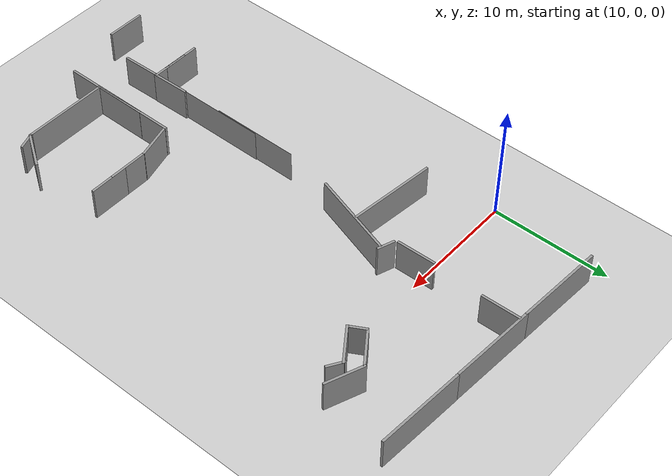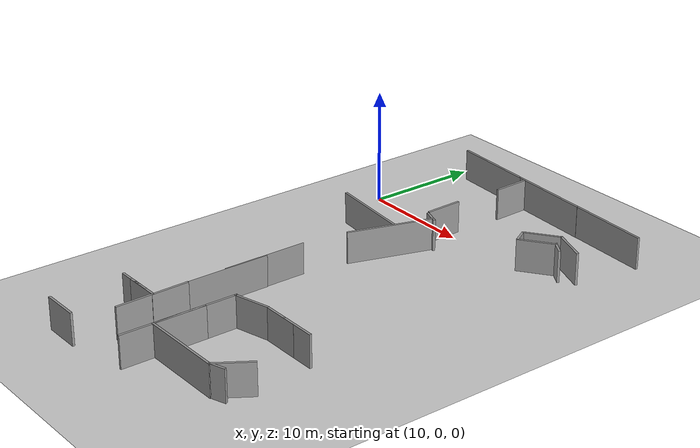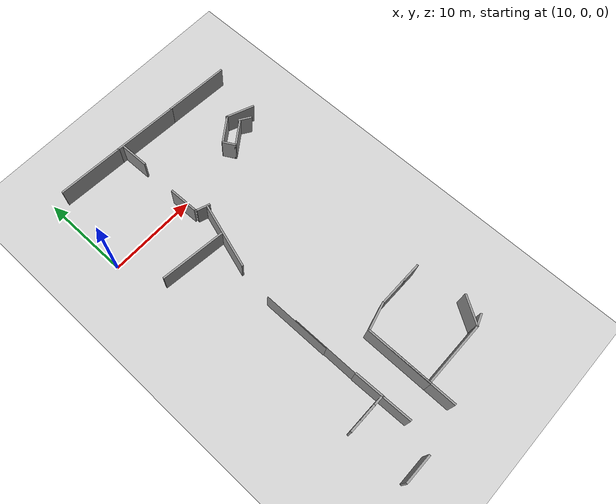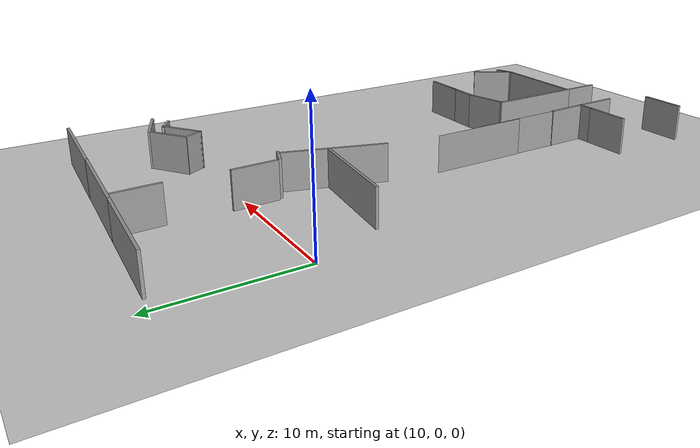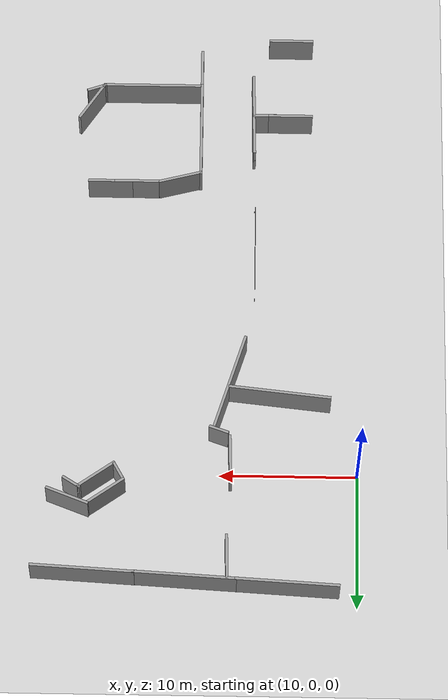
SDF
<sdf version="1.7">
 <world name="default">
  <model name="ground_plane">
   <static>1</static>
   <link name="link">
    <collision name="collision">
     <geometry><plane><normal>0 0 1</normal><size>100 100</size></plane></geometry>
     <surface>
      <contact><collide_bitmask>65535</collide_bitmask></contact>
      <friction><ode><mu>100</mu><mu2>50</mu2></ode></friction>
     </surface>
    </collision>
    <visual name="visual">
     <cast_shadows>0</cast_shadows>
     <geometry><plane><normal>0 0 1</normal><size>100 100</size></plane></geometry>
     <material>
      <script><uri>file://media/materials/scripts/gazebo.material</uri><name>Gazebo/Grey</name></script>
     </material>
    </visual>
   </link>
  </model>
  <model name="grey_wall_clone_0">
   <static>1</static>
   <link name="link">
    <pose>0 0 1.4 0 -0 0</pose>
    <collision name="collision"><geometry><box><size>7.5 0.2 2.8</size></box></geometry></collision>
    <visual name="visual">
     <cast_shadows>0</cast_shadows>
     <geometry><box><size>7.5 0.2 2.8</size></box></geometry>
     <material>
      <script>
       <uri>model://grey_wall/materials/scripts</uri>
       <uri>model://grey_wall/materials/textures</uri>
       <name>vrc/grey_wall</name>
      </script>
     </material>
    </visual>
   </link>
   <pose>15.0501 8.9147 -0 0 0 -0.056773</pose>
  </model>
  <model name="grey_wall_clone_1">
   <static>1</static>
   <link name="link">
    <pose>0 0 1.4 0 -0 0</pose>
    <collision name="collision"><geometry><box><size>7.5 0.2 2.8</size></box></geometry></collision>
    <visual name="visual">
     <cast_shadows>0</cast_shadows>
     <geometry><box><size>7.5 0.2 2.8</size></box></geometry>
     <material>
      <script>
       <uri>model://grey_wall/materials/scripts</uri>
       <uri>model://grey_wall/materials/textures</uri>
       <name>vrc/grey_wall</name>
      </script>
     </material>
    </visual>
   </link>
   <pose>22.4047 8.49986 -0 0 0 -0.056773</pose>
  </model>
  <model name="grey_wall_clone_2">
   <static>1</static>
   <link name="link">
    <pose>0 0 1.4 0 -0 0</pose>
    <collision name="collision"><geometry><box><size>7.5 0.2 2.8</size></box></geometry></collision>
    <visual name="visual">
     <cast_shadows>0</cast_shadows>
     <geometry><box><size>7.5 0.2 2.8</size></box></geometry>
     <material>
      <script>
       <uri>model://grey_wall/materials/scripts</uri>
       <uri>model://grey_wall/materials/textures</uri>
       <name>vrc/grey_wall</name>
      </script>
     </material>
    </visual>
   </link>
   <pose>29.7028 8.10104 -0 0 0 -0.056773</pose>
  </model>
  <model name="half_grey_wall_clone_clone_0_clone_clone_clone_clone_2_clone_clone_0">
   <link name="link">
    <pose>0 0 1.4 0 -0 0</pose>
    <inertial>
     <mass>1</mass>
     <inertia><ixx>1</ixx><ixy>0</ixy><ixz>0</ixz><iyy>1</iyy><iyz>0</iyz><izz>1</izz></inertia>
    </inertial>
    <visual name="visual">
     <cast_shadows>0</cast_shadows>
     <geometry><box><size>3.3 0.2 2.8</size></box></geometry>
     <material>
      <script>
       <uri>model://grey_wall/materials/scripts</uri>
       <uri>model://grey_wall/materials/textures</uri>
       <name>vrc/grey_wall</name>
      </script>
      <shader type="pixel"><normal_map>__default__</normal_map></shader>
      <ambient>1 1 1 1</ambient>
      <diffuse>1 1 1 1</diffuse>
      <specular>0 0 0 1</specular>
      <emissive>0 0 0 1</emissive>
     </material>
    </visual>
    <collision name="collision">
     <geometry><box><size>3.3 0.2 2.8</size></box></geometry>
     <surface>
      <friction>
       <ode><mu>1</mu><mu2>1</mu2><fdir1>0 0 0</fdir1><slip1>0</slip1><slip2>0</slip2></ode>
       <torsional>
        <coefficient>1</coefficient>
        <patch_radius>0</patch_radius>
        <surface_radius>0</surface_radius>
        <use_patch_radius>1</use_patch_radius>
        <ode><slip>0</slip></ode>
       </torsional>
      </friction>
      <bounce><restitution_coefficient>0</restitution_coefficient><threshold>1e+06</threshold></bounce>
      <contact>
       <collide_without_contact>0</collide_without_contact>
       <collide_without_contact_bitmask>1</collide_without_contact_bitmask>
       <collide_bitmask>1</collide_bitmask>
       <ode>
        <soft_cfm>0</soft_cfm>
        <soft_erp>0.2</soft_erp>
        <kp>1e+13</kp>
        <kd>1</kd>
        <max_vel>0.01</max_vel>
        <min_depth>0</min_depth>
       </ode>
       <bullet>
        <split_impulse>1</split_impulse>
        <split_impulse_penetration_threshold>-0.01</split_impulse_penetration_threshold>
        <soft_cfm>0</soft_cfm>
        <soft_erp>0.2</soft_erp>
        <kp>1e+13</kp>
        <kd>1</kd>
       </bullet>
      </contact>
     </surface>
    </collision>
   </link>
   <static>1</static>
   <pose>15.0055 -27.9222 0 0 -0 3.13943</pose>
  </model>
  <model name="half_grey_wall_clone_clone_0_clone_clone_clone_clone_2_clone_clone_1">
   <link name="link">
    <pose>0 0 1.4 0 -0 0</pose>
    <inertial>
     <mass>1</mass>
     <inertia><ixx>1</ixx><ixy>0</ixy><ixz>0</ixz><iyy>1</iyy><iyz>0</iyz><izz>1</izz></inertia>
    </inertial>
    <visual name="visual">
     <cast_shadows>0</cast_shadows>
     <geometry><box><size>3.3 0.2 2.8</size></box></geometry>
     <material>
      <script>
       <uri>model://grey_wall/materials/scripts</uri>
       <uri>model://grey_wall/materials/textures</uri>
       <name>vrc/grey_wall</name>
      </script>
      <shader type="pixel"><normal_map>__default__</normal_map></shader>
      <ambient>1 1 1 1</ambient>
      <diffuse>1 1 1 1</diffuse>
      <specular>0 0 0 1</specular>
      <emissive>0 0 0 1</emissive>
     </material>
    </visual>
    <collision name="collision">
     <geometry><box><size>3.3 0.2 2.8</size></box></geometry>
     <surface>
      <friction>
       <ode><mu>1</mu><mu2>1</mu2><fdir1>0 0 0</fdir1><slip1>0</slip1><slip2>0</slip2></ode>
       <torsional>
        <coefficient>1</coefficient>
        <patch_radius>0</patch_radius>
        <surface_radius>0</surface_radius>
        <use_patch_radius>1</use_patch_radius>
        <ode><slip>0</slip></ode>
       </torsional>
      </friction>
      <bounce><restitution_coefficient>0</restitution_coefficient><threshold>1e+06</threshold></bounce>
      <contact>
       <collide_without_contact>0</collide_without_contact>
       <collide_without_contact_bitmask>1</collide_without_contact_bitmask>
       <collide_bitmask>1</collide_bitmask>
       <ode>
        <soft_cfm>0</soft_cfm>
        <soft_erp>0.2</soft_erp>
        <kp>1e+13</kp>
        <kd>1</kd>
        <max_vel>0.01</max_vel>
        <min_depth>0</min_depth>
       </ode>
       <bullet>
        <split_impulse>1</split_impulse>
        <split_impulse_penetration_threshold>-0.01</split_impulse_penetration_threshold>
        <soft_cfm>0</soft_cfm>
        <soft_erp>0.2</soft_erp>
        <kp>1e+13</kp>
        <kd>1</kd>
       </bullet>
      </contact>
     </surface>
    </collision>
   </link>
   <static>1</static>
   <pose>16.1888 -27.9291 0 0 -0 3.13943</pose>
  </model>
  <model name="half_grey_wall_clone_clone_0_clone_clone_clone_clone_0_clone_0_clone_clone_1_clone_clone_clone_0">
   <link name="link">
    <pose>0 0 1.4 0 -0 0</pose>
    <inertial>
     <mass>1</mass>
     <inertia><ixx>1</ixx><ixy>0</ixy><ixz>0</ixz><iyy>1</iyy><iyz>0</iyz><izz>1</izz></inertia>
    </inertial>
    <visual name="visual">
     <cast_shadows>0</cast_shadows>
     <geometry><box><size>3.3 0.2 2.8</size></box></geometry>
     <material>
      <script>
       <uri>model://grey_wall/materials/scripts</uri>
       <uri>model://grey_wall/materials/textures</uri>
       <name>vrc/grey_wall</name>
      </script>
      <shader type="pixel"><normal_map>__default__</normal_map></shader>
      <ambient>1 1 1 1</ambient>
      <diffuse>1 1 1 1</diffuse>
      <specular>0 0 0 1</specular>
      <emissive>0 0 0 1</emissive>
     </material>
    </visual>
    <collision name="collision">
     <geometry><box><size>3.3 0.2 2.8</size></box></geometry>
     <surface>
      <friction>
       <ode><mu>1</mu><mu2>1</mu2><fdir1>0 0 0</fdir1><slip1>0</slip1><slip2>0</slip2></ode>
       <torsional>
        <coefficient>1</coefficient>
        <patch_radius>0</patch_radius>
        <surface_radius>0</surface_radius>
        <use_patch_radius>1</use_patch_radius>
        <ode><slip>0</slip></ode>
       </torsional>
      </friction>
      <bounce><restitution_coefficient>0</restitution_coefficient><threshold>1e+06</threshold></bounce>
      <contact>
       <collide_without_contact>0</collide_without_contact>
       <collide_without_contact_bitmask>1</collide_without_contact_bitmask>
       <collide_bitmask>1</collide_bitmask>
       <ode>
        <soft_cfm>0</soft_cfm>
        <soft_erp>0.2</soft_erp>
        <kp>1e+13</kp>
        <kd>1</kd>
        <max_vel>0.01</max_vel>
        <min_depth>0</min_depth>
       </ode>
       <bullet>
        <split_impulse>1</split_impulse>
        <split_impulse_penetration_threshold>-0.01</split_impulse_penetration_threshold>
        <soft_cfm>0</soft_cfm>
        <soft_erp>0.2</soft_erp>
        <kp>1e+13</kp>
        <kd>1</kd>
       </bullet>
      </contact>
     </surface>
    </collision>
   </link>
   <static>1</static>
   <pose>17.7676 -29.5911 -0 0 0 -1.5482</pose>
  </model>
  <model name="half_grey_wall_clone_clone_0_clone_clone_clone_clone_2_clone_clone_1_clone_0">
   <link name="link">
    <pose>0 0 1.4 0 -0 0</pose>
    <inertial>
     <mass>1</mass>
     <inertia><ixx>1</ixx><ixy>0</ixy><ixz>0</ixz><iyy>1</iyy><iyz>0</iyz><izz>1</izz></inertia>
    </inertial>
    <visual name="visual">
     <cast_shadows>0</cast_shadows>
     <geometry><box><size>3.3 0.2 2.8</size></box></geometry>
     <material>
      <script>
       <uri>model://grey_wall/materials/scripts</uri>
       <uri>model://grey_wall/materials/textures</uri>
       <name>vrc/grey_wall</name>
      </script>
      <shader type="pixel"><normal_map>__default__</normal_map></shader>
      <ambient>1 1 1 1</ambient>
      <diffuse>1 1 1 1</diffuse>
      <specular>0 0 0 1</specular>
      <emissive>0 0 0 1</emissive>
     </material>
    </visual>
    <collision name="collision">
     <geometry><box><size>3.3 0.2 2.8</size></box></geometry>
     <surface>
      <friction>
       <ode><mu>1</mu><mu2>1</mu2><fdir1>0 0 0</fdir1><slip1>0</slip1><slip2>0</slip2></ode>
       <torsional>
        <coefficient>1</coefficient>
        <patch_radius>0</patch_radius>
        <surface_radius>0</surface_radius>
        <use_patch_radius>1</use_patch_radius>
        <ode><slip>0</slip></ode>
       </torsional>
      </friction>
      <bounce><restitution_coefficient>0</restitution_coefficient><threshold>1e+06</threshold></bounce>
      <contact>
       <collide_without_contact>0</collide_without_contact>
       <collide_without_contact_bitmask>1</collide_without_contact_bitmask>
       <collide_bitmask>1</collide_bitmask>
       <ode>
        <soft_cfm>0</soft_cfm>
        <soft_erp>0.2</soft_erp>
        <kp>1e+13</kp>
        <kd>1</kd>
        <max_vel>0.01</max_vel>
        <min_depth>0</min_depth>
       </ode>
       <bullet>
        <split_impulse>1</split_impulse>
        <split_impulse_penetration_threshold>-0.01</split_impulse_penetration_threshold>
        <soft_cfm>0</soft_cfm>
        <soft_erp>0.2</soft_erp>
        <kp>1e+13</kp>
        <kd>1</kd>
       </bullet>
      </contact>
     </surface>
    </collision>
   </link>
   <static>1</static>
   <pose>14.972 -34.2647 0 0 -0 3.13943</pose>
  </model>
  <model name="grey_wall_0_clone_clone_clone_0_clone_clone_1">
   <static>1</static>
   <link name="link">
    <pose>0 0 1.4 0 -0 0</pose>
    <collision name="collision"><geometry><box><size>7.5 0.2 2.8</size></box></geometry></collision>
    <visual name="visual">
     <cast_shadows>0</cast_shadows>
     <geometry><box><size>7.5 0.2 2.8</size></box></geometry>
     <material>
      <script>
       <uri>model://grey_wall/materials/scripts</uri>
       <uri>model://grey_wall/materials/textures</uri>
       <name>vrc/grey_wall</name>
      </script>
     </material>
    </visual>
   </link>
   <pose>21.6912 -29.545 0 0 -0 1.5708</pose>
  </model>
  <model name="grey_wall_0_clone_clone_clone_0_clone_clone_2">
   <static>1</static>
   <link name="link">
    <pose>0 0 1.4 0 -0 0</pose>
    <collision name="collision"><geometry><box><size>7.5 0.2 2.8</size></box></geometry></collision>
    <visual name="visual">
     <cast_shadows>0</cast_shadows>
     <geometry><box><size>7.5 0.2 2.8</size></box></geometry>
     <material>
      <script>
       <uri>model://grey_wall/materials/scripts</uri>
       <uri>model://grey_wall/materials/textures</uri>
       <name>vrc/grey_wall</name>
      </script>
     </material>
    </visual>
   </link>
   <pose>21.6851 -26.7343 0 0 -0 1.5708</pose>
  </model>
  <model name="grey_wall_1_clone_clone_clone_clone_clone_clone_0_clone_2">
   <static>1</static>
   <link name="link">
    <pose>0 0 1.4 0 -0 0</pose>
    <collision name="collision"><geometry><box><size>7.5 0.2 2.8</size></box></geometry></collision>
    <visual name="visual">
     <cast_shadows>0</cast_shadows>
     <geometry><box><size>7.5 0.2 2.8</size></box></geometry>
     <material>
      <script>
       <uri>model://grey_wall/materials/scripts</uri>
       <uri>model://grey_wall/materials/textures</uri>
       <name>vrc/grey_wall</name>
      </script>
     </material>
    </visual>
   </link>
   <pose>25.3517 -30.3477 0 0 -0 0</pose>
  </model>
  <model name="half_grey_wall_clone_clone_0_clone_clone_clone_clone_0_clone_2">
   <link name="link">
    <pose>0 0 1.4 0 -0 0</pose>
    <inertial>
     <mass>1</mass>
     <inertia><ixx>1</ixx><ixy>0</ixy><ixz>0</ixz><iyy>1</iyy><iyz>0</iyz><izz>1</izz></inertia>
    </inertial>
    <visual name="visual">
     <cast_shadows>0</cast_shadows>
     <geometry><box><size>3.3 0.2 2.8</size></box></geometry>
     <material>
      <script>
       <uri>model://grey_wall/materials/scripts</uri>
       <uri>model://grey_wall/materials/textures</uri>
       <name>vrc/grey_wall</name>
      </script>
      <shader type="pixel"><normal_map>__default__</normal_map></shader>
      <ambient>1 1 1 1</ambient>
      <diffuse>1 1 1 1</diffuse>
      <specular>0 0 0 1</specular>
      <emissive>0 0 0 1</emissive>
     </material>
    </visual>
    <collision name="collision">
     <geometry><box><size>3.3 0.2 2.8</size></box></geometry>
     <surface>
      <friction>
       <ode><mu>1</mu><mu2>1</mu2><fdir1>0 0 0</fdir1><slip1>0</slip1><slip2>0</slip2></ode>
       <torsional>
        <coefficient>1</coefficient>
        <patch_radius>0</patch_radius>
        <surface_radius>0</surface_radius>
        <use_patch_radius>1</use_patch_radius>
        <ode><slip>0</slip></ode>
       </torsional>
      </friction>
      <bounce><restitution_coefficient>0</restitution_coefficient><threshold>1e+06</threshold></bounce>
      <contact>
       <collide_without_contact>0</collide_without_contact>
       <collide_without_contact_bitmask>1</collide_without_contact_bitmask>
       <collide_bitmask>1</collide_bitmask>
       <ode>
        <soft_cfm>0</soft_cfm>
        <soft_erp>0.2</soft_erp>
        <kp>1e+13</kp>
        <kd>1</kd>
        <max_vel>0.01</max_vel>
        <min_depth>0</min_depth>
       </ode>
       <bullet>
        <split_impulse>1</split_impulse>
        <split_impulse_penetration_threshold>-0.01</split_impulse_penetration_threshold>
        <soft_cfm>0</soft_cfm>
        <soft_erp>0.2</soft_erp>
        <kp>1e+13</kp>
        <kd>1</kd>
       </bullet>
      </contact>
     </surface>
    </collision>
   </link>
   <static>1</static>
   <pose>23.2096 -22.7329 -0 0 0 -2.8896</pose>
  </model>
  <model name="half_grey_wall_clone_clone_0_clone_clone_clone_clone_0_clone_0_clone_clone_1_clone_clone_clone_0_clone_6">
   <link name="link">
    <pose>0 0 1.4 0 -0 0</pose>
    <inertial>
     <mass>1</mass>
     <inertia><ixx>1</ixx><ixy>0</ixy><ixz>0</ixz><iyy>1</iyy><iyz>0</iyz><izz>1</izz></inertia>
    </inertial>
    <visual name="visual">
     <cast_shadows>0</cast_shadows>
     <geometry><box><size>3.3 0.2 2.8</size></box></geometry>
     <material>
      <script>
       <uri>model://grey_wall/materials/scripts</uri>
       <uri>model://grey_wall/materials/textures</uri>
       <name>vrc/grey_wall</name>
      </script>
      <shader type="pixel"><normal_map>__default__</normal_map></shader>
      <ambient>1 1 1 1</ambient>
      <diffuse>1 1 1 1</diffuse>
      <specular>0 0 0 1</specular>
      <emissive>0 0 0 1</emissive>
     </material>
    </visual>
    <collision name="collision">
     <geometry><box><size>3.3 0.2 2.8</size></box></geometry>
     <surface>
      <friction>
       <ode><mu>1</mu><mu2>1</mu2><fdir1>0 0 0</fdir1><slip1>0</slip1><slip2>0</slip2></ode>
       <torsional>
        <coefficient>1</coefficient>
        <patch_radius>0</patch_radius>
        <surface_radius>0</surface_radius>
        <use_patch_radius>1</use_patch_radius>
        <ode><slip>0</slip></ode>
       </torsional>
      </friction>
      <bounce><restitution_coefficient>0</restitution_coefficient><threshold>1e+06</threshold></bounce>
      <contact>
       <collide_without_contact>0</collide_without_contact>
       <collide_without_contact_bitmask>1</collide_without_contact_bitmask>
       <collide_bitmask>1</collide_bitmask>
       <ode>
        <soft_cfm>0</soft_cfm>
        <soft_erp>0.2</soft_erp>
        <kp>1e+13</kp>
        <kd>1</kd>
        <max_vel>0.01</max_vel>
        <min_depth>0</min_depth>
       </ode>
       <bullet>
        <split_impulse>1</split_impulse>
        <split_impulse_penetration_threshold>-0.01</split_impulse_penetration_threshold>
        <soft_cfm>0</soft_cfm>
        <soft_erp>0.2</soft_erp>
        <kp>1e+13</kp>
        <kd>1</kd>
       </bullet>
      </contact>
     </surface>
    </collision>
   </link>
   <static>1</static>
   <pose>29.9527 -28.9447 0 0 0 -2.15527</pose>
  </model>
  <model name="half_grey_wall_clone_clone_clone_0_clone_clone_0_clone_clone_0_clone_0_clone_9_clone_0_clone_0">
   <link name="link">
    <pose>0 0 1.4 0 -0 0</pose>
    <inertial>
     <mass>1</mass>
     <inertia><ixx>1</ixx><ixy>0</ixy><ixz>0</ixz><iyy>1</iyy><iyz>0</iyz><izz>1</izz></inertia>
    </inertial>
    <visual name="visual">
     <cast_shadows>0</cast_shadows>
     <geometry><box><size>1.5 0.2 2.8</size></box></geometry>
     <material>
      <script>
       <uri>model://grey_wall/materials/scripts</uri>
       <uri>model://grey_wall/materials/textures</uri>
       <name>vrc/grey_wall</name>
      </script>
      <shader type="pixel"><normal_map>__default__</normal_map></shader>
      <ambient>1 1 1 1</ambient>
      <diffuse>1 1 1 1</diffuse>
      <specular>0 0 0 1</specular>
      <emissive>0 0 0 1</emissive>
     </material>
    </visual>
    <collision name="collision">
     <geometry><box><size>1.5 0.2 2.8</size></box></geometry>
     <surface>
      <friction>
       <ode><mu>1</mu><mu2>1</mu2><fdir1>0 0 0</fdir1><slip1>0</slip1><slip2>0</slip2></ode>
       <torsional>
        <coefficient>1</coefficient>
        <patch_radius>0</patch_radius>
        <surface_radius>0</surface_radius>
        <use_patch_radius>1</use_patch_radius>
        <ode><slip>0</slip></ode>
       </torsional>
      </friction>
      <bounce><restitution_coefficient>0</restitution_coefficient><threshold>1e+06</threshold></bounce>
      <contact>
       <collide_without_contact>0</collide_without_contact>
       <collide_without_contact_bitmask>1</collide_without_contact_bitmask>
       <collide_bitmask>1</collide_bitmask>
       <ode>
        <soft_cfm>0</soft_cfm>
        <soft_erp>0.2</soft_erp>
        <kp>1e+13</kp>
        <kd>1</kd>
        <max_vel>0.01</max_vel>
        <min_depth>0</min_depth>
       </ode>
       <bullet>
        <split_impulse>1</split_impulse>
        <split_impulse_penetration_threshold>-0.01</split_impulse_penetration_threshold>
        <soft_cfm>0</soft_cfm>
        <soft_erp>0.2</soft_erp>
        <kp>1e+13</kp>
        <kd>1</kd>
       </bullet>
      </contact>
     </surface>
    </collision>
   </link>
   <static>1</static>
   <pose>29.6133 -30.0995 -0 0 0 -2.81214</pose>
  </model>
  <model name="half_grey_wall_clone_clone_0_clone_clone_clone_clone_0_clone_0_clone_clone_1_clone_clone_clone_3">
   <link name="link">
    <pose>0 0 1.4 0 -0 0</pose>
    <inertial>
     <mass>1</mass>
     <inertia><ixx>1</ixx><ixy>0</ixy><ixz>0</ixz><iyy>1</iyy><iyz>0</iyz><izz>1</izz></inertia>
    </inertial>
    <visual name="visual">
     <cast_shadows>0</cast_shadows>
     <geometry><box><size>3.3 0.2 2.8</size></box></geometry>
     <material>
      <script>
       <uri>model://grey_wall/materials/scripts</uri>
       <uri>model://grey_wall/materials/textures</uri>
       <name>vrc/grey_wall</name>
      </script>
      <shader type="pixel"><normal_map>__default__</normal_map></shader>
      <ambient>1 1 1 1</ambient>
      <diffuse>1 1 1 1</diffuse>
      <specular>0 0 0 1</specular>
      <emissive>0 0 0 1</emissive>
     </material>
    </visual>
    <collision name="collision">
     <geometry><box><size>3.3 0.2 2.8</size></box></geometry>
     <surface>
      <friction>
       <ode><mu>1</mu><mu2>1</mu2><fdir1>0 0 0</fdir1><slip1>0</slip1><slip2>0</slip2></ode>
       <torsional>
        <coefficient>1</coefficient>
        <patch_radius>0</patch_radius>
        <surface_radius>0</surface_radius>
        <use_patch_radius>1</use_patch_radius>
        <ode><slip>0</slip></ode>
       </torsional>
      </friction>
      <bounce><restitution_coefficient>0</restitution_coefficient><threshold>1e+06</threshold></bounce>
      <contact>
       <collide_without_contact>0</collide_without_contact>
       <collide_without_contact_bitmask>1</collide_without_contact_bitmask>
       <collide_bitmask>1</collide_bitmask>
       <ode>
        <soft_cfm>0</soft_cfm>
        <soft_erp>0.2</soft_erp>
        <kp>1e+13</kp>
        <kd>1</kd>
        <max_vel>0.01</max_vel>
        <min_depth>0</min_depth>
       </ode>
       <bullet>
        <split_impulse>1</split_impulse>
        <split_impulse_penetration_threshold>-0.01</split_impulse_penetration_threshold>
        <soft_cfm>0</soft_cfm>
        <soft_erp>0.2</soft_erp>
        <kp>1e+13</kp>
        <kd>1</kd>
       </bullet>
      </contact>
     </surface>
    </collision>
   </link>
   <static>1</static>
   <pose>17.722 -26.4406 -0 0 0 -1.5482</pose>
  </model>
  <model name="half_grey_wall_clone_clone_0_clone_clone_clone_clone_0_clone_0_clone_clone_1_clone_clone_clone_4">
   <link name="link">
    <pose>0 0 1.4 0 -0 0</pose>
    <inertial>
     <mass>1</mass>
     <inertia><ixx>1</ixx><ixy>0</ixy><ixz>0</ixz><iyy>1</iyy><iyz>0</iyz><izz>1</izz></inertia>
    </inertial>
    <visual name="visual">
     <cast_shadows>0</cast_shadows>
     <geometry><box><size>3.3 0.2 2.8</size></box></geometry>
     <material>
      <script>
       <uri>model://grey_wall/materials/scripts</uri>
       <uri>model://grey_wall/materials/textures</uri>
       <name>vrc/grey_wall</name>
      </script>
      <shader type="pixel"><normal_map>__default__</normal_map></shader>
      <ambient>1 1 1 1</ambient>
      <diffuse>1 1 1 1</diffuse>
      <specular>0 0 0 1</specular>
      <emissive>0 0 0 1</emissive>
     </material>
    </visual>
    <collision name="collision">
     <geometry><box><size>3.3 0.2 2.8</size></box></geometry>
     <surface>
      <friction>
       <ode><mu>1</mu><mu2>1</mu2><fdir1>0 0 0</fdir1><slip1>0</slip1><slip2>0</slip2></ode>
       <torsional>
        <coefficient>1</coefficient>
        <patch_radius>0</patch_radius>
        <surface_radius>0</surface_radius>
        <use_patch_radius>1</use_patch_radius>
        <ode><slip>0</slip></ode>
       </torsional>
      </friction>
      <bounce><restitution_coefficient>0</restitution_coefficient><threshold>1e+06</threshold></bounce>
      <contact>
       <collide_without_contact>0</collide_without_contact>
       <collide_without_contact_bitmask>1</collide_without_contact_bitmask>
       <collide_bitmask>1</collide_bitmask>
       <ode>
        <soft_cfm>0</soft_cfm>
        <soft_erp>0.2</soft_erp>
        <kp>1e+13</kp>
        <kd>1</kd>
        <max_vel>0.01</max_vel>
        <min_depth>0</min_depth>
       </ode>
       <bullet>
        <split_impulse>1</split_impulse>
        <split_impulse_penetration_threshold>-0.01</split_impulse_penetration_threshold>
        <soft_cfm>0</soft_cfm>
        <soft_erp>0.2</soft_erp>
        <kp>1e+13</kp>
        <kd>1</kd>
       </bullet>
      </contact>
     </surface>
    </collision>
   </link>
   <static>1</static>
   <pose>19.3885 7.01801 -0 0 0 -1.5482</pose>
  </model>
  <model name="half_grey_wall_clone_clone_0_clone_clone_clone_clone_0_clone_0_clone_clone_1_clone_clone_clone_4_clone">
   <link name="link">
    <pose>0 0 1.4 0 -0 0</pose>
    <inertial>
     <mass>1</mass>
     <inertia><ixx>1</ixx><ixy>0</ixy><ixz>0</ixz><iyy>1</iyy><iyz>0</iyz><izz>1</izz></inertia>
    </inertial>
    <visual name="visual">
     <cast_shadows>0</cast_shadows>
     <geometry><box><size>3.3 0.2 2.8</size></box></geometry>
     <material>
      <script>
       <uri>model://grey_wall/materials/scripts</uri>
       <uri>model://grey_wall/materials/textures</uri>
       <name>vrc/grey_wall</name>
      </script>
      <shader type="pixel"><normal_map>__default__</normal_map></shader>
      <ambient>1 1 1 1</ambient>
      <diffuse>1 1 1 1</diffuse>
      <specular>0 0 0 1</specular>
      <emissive>0 0 0 1</emissive>
     </material>
    </visual>
    <collision name="collision">
     <geometry><box><size>3.3 0.2 2.8</size></box></geometry>
     <surface>
      <friction>
       <ode><mu>1</mu><mu2>1</mu2><fdir1>0 0 0</fdir1><slip1>0</slip1><slip2>0</slip2></ode>
       <torsional>
        <coefficient>1</coefficient>
        <patch_radius>0</patch_radius>
        <surface_radius>0</surface_radius>
        <use_patch_radius>1</use_patch_radius>
        <ode><slip>0</slip></ode>
       </torsional>
      </friction>
      <bounce><restitution_coefficient>0</restitution_coefficient><threshold>1e+06</threshold></bounce>
      <contact>
       <collide_without_contact>0</collide_without_contact>
       <collide_without_contact_bitmask>1</collide_without_contact_bitmask>
       <collide_bitmask>1</collide_bitmask>
       <ode>
        <soft_cfm>0</soft_cfm>
        <soft_erp>0.2</soft_erp>
        <kp>1e+13</kp>
        <kd>1</kd>
        <max_vel>0.01</max_vel>
        <min_depth>0</min_depth>
       </ode>
       <bullet>
        <split_impulse>1</split_impulse>
        <split_impulse_penetration_threshold>-0.01</split_impulse_penetration_threshold>
        <soft_cfm>0</soft_cfm>
        <soft_erp>0.2</soft_erp>
        <kp>1e+13</kp>
        <kd>1</kd>
       </bullet>
      </contact>
     </surface>
    </collision>
   </link>
   <static>1</static>
   <pose>19.2261 -0.525373 -0 0 0 -1.5482</pose>
  </model>
  <model name="half_grey_wall_clone_clone_0_clone_clone_clone_clone_0_clone_2_clone">
   <link name="link">
    <pose>0 0 1.4 0 -0 0</pose>
    <inertial>
     <mass>1</mass>
     <inertia><ixx>1</ixx><ixy>0</ixy><ixz>0</ixz><iyy>1</iyy><iyz>0</iyz><izz>1</izz></inertia>
    </inertial>
    <visual name="visual">
     <cast_shadows>0</cast_shadows>
     <geometry><box><size>3.3 0.2 2.8</size></box></geometry>
     <material>
      <script>
       <uri>model://grey_wall/materials/scripts</uri>
       <uri>model://grey_wall/materials/textures</uri>
       <name>vrc/grey_wall</name>
      </script>
      <shader type="pixel"><normal_map>__default__</normal_map></shader>
      <ambient>1 1 1 1</ambient>
      <diffuse>1 1 1 1</diffuse>
      <specular>0 0 0 1</specular>
      <emissive>0 0 0 1</emissive>
     </material>
    </visual>
    <collision name="collision">
     <geometry><box><size>3.3 0.2 2.8</size></box></geometry>
     <surface>
      <friction>
       <ode><mu>1</mu><mu2>1</mu2><fdir1>0 0 0</fdir1><slip1>0</slip1><slip2>0</slip2></ode>
       <torsional>
        <coefficient>1</coefficient>
        <patch_radius>0</patch_radius>
        <surface_radius>0</surface_radius>
        <use_patch_radius>1</use_patch_radius>
        <ode><slip>0</slip></ode>
       </torsional>
      </friction>
      <bounce><restitution_coefficient>0</restitution_coefficient><threshold>1e+06</threshold></bounce>
      <contact>
       <collide_without_contact>0</collide_without_contact>
       <collide_without_contact_bitmask>1</collide_without_contact_bitmask>
       <collide_bitmask>1</collide_bitmask>
       <ode>
        <soft_cfm>0</soft_cfm>
        <soft_erp>0.2</soft_erp>
        <kp>1e+13</kp>
        <kd>1</kd>
        <max_vel>0.01</max_vel>
        <min_depth>0</min_depth>
       </ode>
       <bullet>
        <split_impulse>1</split_impulse>
        <split_impulse_penetration_threshold>-0.01</split_impulse_penetration_threshold>
        <soft_cfm>0</soft_cfm>
        <soft_erp>0.2</soft_erp>
        <kp>1e+13</kp>
        <kd>1</kd>
       </bullet>
      </contact>
     </surface>
    </collision>
   </link>
   <static>1</static>
   <pose>28.1811 2.22351 -0 0 0 -2.52419</pose>
  </model>
  <model name="half_grey_wall_clone_clone_clone_0_clone_clone_0_clone_clone_0_clone_0_clone_13_clone_clone">
   <link name="link">
    <pose>0 0 1.4 0 -0 0</pose>
    <inertial>
     <mass>1</mass>
     <inertia><ixx>1</ixx><ixy>0</ixy><ixz>0</ixz><iyy>1</iyy><iyz>0</iyz><izz>1</izz></inertia>
    </inertial>
    <visual name="visual">
     <cast_shadows>0</cast_shadows>
     <geometry><box><size>1.5 0.2 2.8</size></box></geometry>
     <material>
      <script>
       <uri>model://grey_wall/materials/scripts</uri>
       <uri>model://grey_wall/materials/textures</uri>
       <name>vrc/grey_wall</name>
      </script>
      <shader type="pixel"><normal_map>__default__</normal_map></shader>
      <ambient>1 1 1 1</ambient>
      <diffuse>1 1 1 1</diffuse>
      <specular>0 0 0 1</specular>
      <emissive>0 0 0 1</emissive>
     </material>
    </visual>
    <collision name="collision">
     <geometry><box><size>1.5 0.2 2.8</size></box></geometry>
     <surface>
      <friction>
       <ode><mu>1</mu><mu2>1</mu2><fdir1>0 0 0</fdir1><slip1>0</slip1><slip2>0</slip2></ode>
       <torsional>
        <coefficient>1</coefficient>
        <patch_radius>0</patch_radius>
        <surface_radius>0</surface_radius>
        <use_patch_radius>1</use_patch_radius>
        <ode><slip>0</slip></ode>
       </torsional>
      </friction>
      <bounce><restitution_coefficient>0</restitution_coefficient><threshold>1e+06</threshold></bounce>
      <contact>
       <collide_without_contact>0</collide_without_contact>
       <collide_without_contact_bitmask>1</collide_without_contact_bitmask>
       <collide_bitmask>1</collide_bitmask>
       <ode>
        <soft_cfm>0</soft_cfm>
        <soft_erp>0.2</soft_erp>
        <kp>1e+13</kp>
        <kd>1</kd>
        <max_vel>0.01</max_vel>
        <min_depth>0</min_depth>
       </ode>
       <bullet>
        <split_impulse>1</split_impulse>
        <split_impulse_penetration_threshold>-0.01</split_impulse_penetration_threshold>
        <soft_cfm>0</soft_cfm>
        <soft_erp>0.2</soft_erp>
        <kp>1e+13</kp>
        <kd>1</kd>
       </bullet>
      </contact>
     </surface>
    </collision>
   </link>
   <static>1</static>
   <pose>27.2587 0.706784 0 0 -0 2.08553</pose>
  </model>
  <model name="half_grey_wall_clone_clone_0_clone_clone_clone_clone_0_clone_2_clone_clone">
   <link name="link">
    <pose>0 0 1.4 0 -0 0</pose>
    <inertial>
     <mass>1</mass>
     <inertia><ixx>1</ixx><ixy>0</ixy><ixz>0</ixz><iyy>1</iyy><iyz>0</iyz><izz>1</izz></inertia>
    </inertial>
    <visual name="visual">
     <cast_shadows>0</cast_shadows>
     <geometry><box><size>3.3 0.2 2.8</size></box></geometry>
     <material>
      <script>
       <uri>model://grey_wall/materials/scripts</uri>
       <uri>model://grey_wall/materials/textures</uri>
       <name>vrc/grey_wall</name>
      </script>
      <shader type="pixel"><normal_map>__default__</normal_map></shader>
      <ambient>1 1 1 1</ambient>
      <diffuse>1 1 1 1</diffuse>
      <specular>0 0 0 1</specular>
      <emissive>0 0 0 1</emissive>
     </material>
    </visual>
    <collision name="collision">
     <geometry><box><size>3.3 0.2 2.8</size></box></geometry>
     <surface>
      <friction>
       <ode><mu>1</mu><mu2>1</mu2><fdir1>0 0 0</fdir1><slip1>0</slip1><slip2>0</slip2></ode>
       <torsional>
        <coefficient>1</coefficient>
        <patch_radius>0</patch_radius>
        <surface_radius>0</surface_radius>
        <use_patch_radius>1</use_patch_radius>
        <ode><slip>0</slip></ode>
       </torsional>
      </friction>
      <bounce><restitution_coefficient>0</restitution_coefficient><threshold>1e+06</threshold></bounce>
      <contact>
       <collide_without_contact>0</collide_without_contact>
       <collide_without_contact_bitmask>1</collide_without_contact_bitmask>
       <collide_bitmask>1</collide_bitmask>
       <ode>
        <soft_cfm>0</soft_cfm>
        <soft_erp>0.2</soft_erp>
        <kp>1e+13</kp>
        <kd>1</kd>
        <max_vel>0.01</max_vel>
        <min_depth>0</min_depth>
       </ode>
       <bullet>
        <split_impulse>1</split_impulse>
        <split_impulse_penetration_threshold>-0.01</split_impulse_penetration_threshold>
        <soft_cfm>0</soft_cfm>
        <soft_erp>0.2</soft_erp>
        <kp>1e+13</kp>
        <kd>1</kd>
       </bullet>
      </contact>
     </surface>
    </collision>
   </link>
   <static>1</static>
   <pose>28.8845 0.981375 -0 0 0 -2.52419</pose>
  </model>
  <model name="half_grey_wall_clone_clone_clone_0_clone_clone_0_clone_clone_0_clone_0_clone_13_clone_clone_0">
   <link name="link">
    <pose>0 0 1.4 0 -0 0</pose>
    <inertial>
     <mass>1</mass>
     <inertia><ixx>1</ixx><ixy>0</ixy><ixz>0</ixz><iyy>1</iyy><iyz>0</iyz><izz>1</izz></inertia>
    </inertial>
    <visual name="visual">
     <cast_shadows>0</cast_shadows>
     <geometry><box><size>1.5 0.2 2.8</size></box></geometry>
     <material>
      <script>
       <uri>model://grey_wall/materials/scripts</uri>
       <uri>model://grey_wall/materials/textures</uri>
       <name>vrc/grey_wall</name>
      </script>
      <shader type="pixel"><normal_map>__default__</normal_map></shader>
      <ambient>1 1 1 1</ambient>
      <diffuse>1 1 1 1</diffuse>
      <specular>0 0 0 1</specular>
      <emissive>0 0 0 1</emissive>
     </material>
    </visual>
    <collision name="collision">
     <geometry><box><size>1.5 0.2 2.8</size></box></geometry>
     <surface>
      <friction>
       <ode><mu>1</mu><mu2>1</mu2><fdir1>0 0 0</fdir1><slip1>0</slip1><slip2>0</slip2></ode>
       <torsional>
        <coefficient>1</coefficient>
        <patch_radius>0</patch_radius>
        <surface_radius>0</surface_radius>
        <use_patch_radius>1</use_patch_radius>
        <ode><slip>0</slip></ode>
       </torsional>
      </friction>
      <bounce><restitution_coefficient>0</restitution_coefficient><threshold>1e+06</threshold></bounce>
      <contact>
       <collide_without_contact>0</collide_without_contact>
       <collide_without_contact_bitmask>1</collide_without_contact_bitmask>
       <collide_bitmask>1</collide_bitmask>
       <ode>
        <soft_cfm>0</soft_cfm>
        <soft_erp>0.2</soft_erp>
        <kp>1e+13</kp>
        <kd>1</kd>
        <max_vel>0.01</max_vel>
        <min_depth>0</min_depth>
       </ode>
       <bullet>
        <split_impulse>1</split_impulse>
        <split_impulse_penetration_threshold>-0.01</split_impulse_penetration_threshold>
        <soft_cfm>0</soft_cfm>
        <soft_erp>0.2</soft_erp>
        <kp>1e+13</kp>
        <kd>1</kd>
       </bullet>
      </contact>
     </surface>
    </collision>
   </link>
   <static>1</static>
   <pose>30.6305 1.59655 0 0 -0 2.5809</pose>
  </model>
  <model name="half_grey_wall_clone_clone_0_clone_clone_clone_clone_0_clone_2_clone_clone_0">
   <link name="link">
    <pose>0 0 1.4 0 -0 0</pose>
    <inertial>
     <mass>1</mass>
     <inertia><ixx>1</ixx><ixy>0</ixy><ixz>0</ixz><iyy>1</iyy><iyz>0</iyz><izz>1</izz></inertia>
    </inertial>
    <visual name="visual">
     <cast_shadows>0</cast_shadows>
     <geometry><box><size>3.3 0.2 2.8</size></box></geometry>
     <material>
      <script>
       <uri>model://grey_wall/materials/scripts</uri>
       <uri>model://grey_wall/materials/textures</uri>
       <name>vrc/grey_wall</name>
      </script>
      <shader type="pixel"><normal_map>__default__</normal_map></shader>
      <ambient>1 1 1 1</ambient>
      <diffuse>1 1 1 1</diffuse>
      <specular>0 0 0 1</specular>
      <emissive>0 0 0 1</emissive>
     </material>
    </visual>
    <collision name="collision">
     <geometry><box><size>3.3 0.2 2.8</size></box></geometry>
     <surface>
      <friction>
       <ode><mu>1</mu><mu2>1</mu2><fdir1>0 0 0</fdir1><slip1>0</slip1><slip2>0</slip2></ode>
       <torsional>
        <coefficient>1</coefficient>
        <patch_radius>0</patch_radius>
        <surface_radius>0</surface_radius>
        <use_patch_radius>1</use_patch_radius>
        <ode><slip>0</slip></ode>
       </torsional>
      </friction>
      <bounce><restitution_coefficient>0</restitution_coefficient><threshold>1e+06</threshold></bounce>
      <contact>
       <collide_without_contact>0</collide_without_contact>
       <collide_without_contact_bitmask>1</collide_without_contact_bitmask>
       <collide_bitmask>1</collide_bitmask>
       <ode>
        <soft_cfm>0</soft_cfm>
        <soft_erp>0.2</soft_erp>
        <kp>1e+13</kp>
        <kd>1</kd>
        <max_vel>0.01</max_vel>
        <min_depth>0</min_depth>
       </ode>
       <bullet>
        <split_impulse>1</split_impulse>
        <split_impulse_penetration_threshold>-0.01</split_impulse_penetration_threshold>
        <soft_cfm>0</soft_cfm>
        <soft_erp>0.2</soft_erp>
        <kp>1e+13</kp>
        <kd>1</kd>
       </bullet>
      </contact>
     </surface>
    </collision>
   </link>
   <static>1</static>
   <pose>30.9085 2.61464 0 0 -0 2.77525</pose>
  </model>
  <model name="half_grey_wall_clone_clone_0_clone_clone_clone_clone_2_clone_clone_0_clone">
   <link name="link">
    <pose>0 0 1.4 0 -0 0</pose>
    <inertial>
     <mass>1</mass>
     <inertia><ixx>1</ixx><ixy>0</ixy><ixz>0</ixz><iyy>1</iyy><iyz>0</iyz><izz>1</izz></inertia>
    </inertial>
    <visual name="visual">
     <cast_shadows>0</cast_shadows>
     <geometry><box><size>3.3 0.2 2.8</size></box></geometry>
     <material>
      <script>
       <uri>model://grey_wall/materials/scripts</uri>
       <uri>model://grey_wall/materials/textures</uri>
       <name>vrc/grey_wall</name>
      </script>
      <shader type="pixel"><normal_map>__default__</normal_map></shader>
      <ambient>1 1 1 1</ambient>
      <diffuse>1 1 1 1</diffuse>
      <specular>0 0 0 1</specular>
      <emissive>0 0 0 1</emissive>
     </material>
    </visual>
    <collision name="collision">
     <geometry><box><size>3.3 0.2 2.8</size></box></geometry>
     <surface>
      <friction>
       <ode><mu>1</mu><mu2>1</mu2><fdir1>0 0 0</fdir1><slip1>0</slip1><slip2>0</slip2></ode>
       <torsional>
        <coefficient>1</coefficient>
        <patch_radius>0</patch_radius>
        <surface_radius>0</surface_radius>
        <use_patch_radius>1</use_patch_radius>
        <ode><slip>0</slip></ode>
       </torsional>
      </friction>
      <bounce><restitution_coefficient>0</restitution_coefficient><threshold>1e+06</threshold></bounce>
      <contact>
       <collide_without_contact>0</collide_without_contact>
       <collide_without_contact_bitmask>1</collide_without_contact_bitmask>
       <collide_bitmask>1</collide_bitmask>
       <ode>
        <soft_cfm>0</soft_cfm>
        <soft_erp>0.2</soft_erp>
        <kp>1e+13</kp>
        <kd>1</kd>
        <max_vel>0.01</max_vel>
        <min_depth>0</min_depth>
       </ode>
       <bullet>
        <split_impulse>1</split_impulse>
        <split_impulse_penetration_threshold>-0.01</split_impulse_penetration_threshold>
        <soft_cfm>0</soft_cfm>
        <soft_erp>0.2</soft_erp>
        <kp>1e+13</kp>
        <kd>1</kd>
       </bullet>
      </contact>
     </surface>
    </collision>
   </link>
   <static>1</static>
   <pose>26.4324 -22.356 0 0 -0 3.13943</pose>
  </model>
  <model name="half_grey_wall_clone_clone_0_clone_clone_clone_clone_2_clone_clone_0_clone_0">
   <link name="link">
    <pose>0 0 1.4 0 -0 0</pose>
    <inertial>
     <mass>1</mass>
     <inertia><ixx>1</ixx><ixy>0</ixy><ixz>0</ixz><iyy>1</iyy><iyz>0</iyz><izz>1</izz></inertia>
    </inertial>
    <visual name="visual">
     <cast_shadows>0</cast_shadows>
     <geometry><box><size>3.3 0.2 2.8</size></box></geometry>
     <material>
      <script>
       <uri>model://grey_wall/materials/scripts</uri>
       <uri>model://grey_wall/materials/textures</uri>
       <name>vrc/grey_wall</name>
      </script>
      <shader type="pixel"><normal_map>__default__</normal_map></shader>
      <ambient>1 1 1 1</ambient>
      <diffuse>1 1 1 1</diffuse>
      <specular>0 0 0 1</specular>
      <emissive>0 0 0 1</emissive>
     </material>
    </visual>
    <collision name="collision">
     <geometry><box><size>3.3 0.2 2.8</size></box></geometry>
     <surface>
      <friction>
       <ode><mu>1</mu><mu2>1</mu2><fdir1>0 0 0</fdir1><slip1>0</slip1><slip2>0</slip2></ode>
       <torsional>
        <coefficient>1</coefficient>
        <patch_radius>0</patch_radius>
        <surface_radius>0</surface_radius>
        <use_patch_radius>1</use_patch_radius>
        <ode><slip>0</slip></ode>
       </torsional>
      </friction>
      <bounce><restitution_coefficient>0</restitution_coefficient><threshold>1e+06</threshold></bounce>
      <contact>
       <collide_without_contact>0</collide_without_contact>
       <collide_without_contact_bitmask>1</collide_without_contact_bitmask>
       <collide_bitmask>1</collide_bitmask>
       <ode>
        <soft_cfm>0</soft_cfm>
        <soft_erp>0.2</soft_erp>
        <kp>1e+13</kp>
        <kd>1</kd>
        <max_vel>0.01</max_vel>
        <min_depth>0</min_depth>
       </ode>
       <bullet>
        <split_impulse>1</split_impulse>
        <split_impulse_penetration_threshold>-0.01</split_impulse_penetration_threshold>
        <soft_cfm>0</soft_cfm>
        <soft_erp>0.2</soft_erp>
        <kp>1e+13</kp>
        <kd>1</kd>
       </bullet>
      </contact>
     </surface>
    </collision>
   </link>
   <static>1</static>
   <pose>28.4071 -22.3573 0 0 -0 3.13943</pose>
  </model>
  <model name="slim_grey_wall_clone_1">
   <link name="link">
    <pose>0 0 1.4 0 -0 0</pose>
    <inertial>
     <mass>1</mass>
     <inertia><ixx>1</ixx><ixy>0</ixy><ixz>0</ixz><iyy>1</iyy><iyz>0</iyz><izz>1</izz></inertia>
    </inertial>
    <visual name="visual">
     <cast_shadows>0</cast_shadows>
     <geometry><box><size>7.5 0.0001 2.8</size></box></geometry>
     <material>
      <script>
       <uri>model://grey_wall/materials/scripts</uri>
       <uri>model://grey_wall/materials/textures</uri>
       <name>vrc/grey_wall</name>
      </script>
      <shader type="pixel"><normal_map>__default__</normal_map></shader>
      <ambient>1 1 1 1</ambient>
      <diffuse>1 1 1 1</diffuse>
      <specular>0 0 0 1</specular>
      <emissive>0 0 0 1</emissive>
     </material>
    </visual>
    <collision name="collision">
     <geometry><box><size>7.5 0.0001 2.8</size></box></geometry>
     <surface>
      <friction>
       <ode><mu>1</mu><mu2>1</mu2><fdir1>0 0 0</fdir1><slip1>0</slip1><slip2>0</slip2></ode>
       <torsional>
        <coefficient>1</coefficient>
        <patch_radius>0</patch_radius>
        <surface_radius>0</surface_radius>
        <use_patch_radius>1</use_patch_radius>
        <ode><slip>0</slip></ode>
       </torsional>
      </friction>
      <bounce><restitution_coefficient>0</restitution_coefficient><threshold>1e+06</threshold></bounce>
      <contact>
       <collide_without_contact>0</collide_without_contact>
       <collide_without_contact_bitmask>1</collide_without_contact_bitmask>
       <collide_bitmask>1</collide_bitmask>
       <ode>
        <soft_cfm>0</soft_cfm>
        <soft_erp>0.2</soft_erp>
        <kp>1e+13</kp>
        <kd>1</kd>
        <max_vel>0.01</max_vel>
        <min_depth>0</min_depth>
       </ode>
       <bullet>
        <split_impulse>1</split_impulse>
        <split_impulse_penetration_threshold>-0.01</split_impulse_penetration_threshold>
        <soft_cfm>0</soft_cfm>
        <soft_erp>0.2</soft_erp>
        <kp>1e+13</kp>
        <kd>1</kd>
       </bullet>
      </contact>
     </surface>
    </collision>
   </link>
   <static>1</static>
   <pose>17.5583 -17.5652 0 0 0 -1.5708</pose>
  </model>
  <model name="half_grey_wall_clone_clone_clone_0_clone_clone_0_clone_clone_0_clone_0_clone_13_clone_clone_0_clone_0">
   <link name="link">
    <pose>0 0 1.4 0 -0 0</pose>
    <inertial>
     <mass>1</mass>
     <inertia><ixx>1</ixx><ixy>0</ixy><ixz>0</ixz><iyy>1</iyy><iyz>0</iyz><izz>1</izz></inertia>
    </inertial>
    <visual name="visual">
     <cast_shadows>0</cast_shadows>
     <geometry><box><size>1.5 0.2 2.8</size></box></geometry>
     <material>
      <script>
       <uri>model://grey_wall/materials/scripts</uri>
       <uri>model://grey_wall/materials/textures</uri>
       <name>vrc/grey_wall</name>
      </script>
      <shader type="pixel"><normal_map>__default__</normal_map></shader>
      <ambient>1 1 1 1</ambient>
      <diffuse>1 1 1 1</diffuse>
      <specular>0 0 0 1</specular>
      <emissive>0 0 0 1</emissive>
     </material>
    </visual>
    <collision name="collision">
     <geometry><box><size>1.5 0.2 2.8</size></box></geometry>
     <surface>
      <friction>
       <ode><mu>1</mu><mu2>1</mu2><fdir1>0 0 0</fdir1><slip1>0</slip1><slip2>0</slip2></ode>
       <torsional>
        <coefficient>1</coefficient>
        <patch_radius>0</patch_radius>
        <surface_radius>0</surface_radius>
        <use_patch_radius>1</use_patch_radius>
        <ode><slip>0</slip></ode>
       </torsional>
      </friction>
      <bounce><restitution_coefficient>0</restitution_coefficient><threshold>1e+06</threshold></bounce>
      <contact>
       <collide_without_contact>0</collide_without_contact>
       <collide_without_contact_bitmask>1</collide_without_contact_bitmask>
       <collide_bitmask>1</collide_bitmask>
       <ode>
        <soft_cfm>0</soft_cfm>
        <soft_erp>0.2</soft_erp>
        <kp>1e+13</kp>
        <kd>1</kd>
        <max_vel>0.01</max_vel>
        <min_depth>0</min_depth>
       </ode>
       <bullet>
        <split_impulse>1</split_impulse>
        <split_impulse_penetration_threshold>-0.01</split_impulse_penetration_threshold>
        <soft_cfm>0</soft_cfm>
        <soft_erp>0.2</soft_erp>
        <kp>1e+13</kp>
        <kd>1</kd>
       </bullet>
      </contact>
     </surface>
    </collision>
   </link>
   <static>1</static>
   <pose>20.0675 -2.60114 -0 0 -0 2.80444</pose>
  </model>
  <model name="slim_grey_wall_clone_1_clone">
   <link name="link">
    <pose>0 0 1.4 0 -0 0</pose>
    <inertial>
     <mass>1</mass>
     <inertia><ixx>1</ixx><ixy>0</ixy><ixz>0</ixz><iyy>1</iyy><iyz>0</iyz><izz>1</izz></inertia>
    </inertial>
    <visual name="visual">
     <cast_shadows>0</cast_shadows>
     <geometry><box><size>7.5 0.0001 2.8</size></box></geometry>
     <material>
      <script>
       <uri>model://grey_wall/materials/scripts</uri>
       <uri>model://grey_wall/materials/textures</uri>
       <name>vrc/grey_wall</name>
      </script>
      <shader type="pixel"><normal_map>__default__</normal_map></shader>
      <ambient>1 1 1 1</ambient>
      <diffuse>1 1 1 1</diffuse>
      <specular>0 0 0 1</specular>
      <emissive>0 0 0 1</emissive>
     </material>
    </visual>
    <collision name="collision">
     <geometry><box><size>7.5 0.2 2.8</size></box></geometry>
     <surface>
      <friction>
       <ode><mu>1</mu><mu2>1</mu2><fdir1>0 0 0</fdir1><slip1>0</slip1><slip2>0</slip2></ode>
       <torsional>
        <coefficient>1</coefficient>
        <patch_radius>0</patch_radius>
        <surface_radius>0</surface_radius>
        <use_patch_radius>1</use_patch_radius>
        <ode><slip>0</slip></ode>
       </torsional>
      </friction>
      <bounce><restitution_coefficient>0</restitution_coefficient><threshold>1e+06</threshold></bounce>
      <contact>
       <collide_without_contact>0</collide_without_contact>
       <collide_without_contact_bitmask>1</collide_without_contact_bitmask>
       <collide_bitmask>1</collide_bitmask>
       <ode>
        <soft_cfm>0</soft_cfm>
        <soft_erp>0.2</soft_erp>
        <kp>1e+13</kp>
        <kd>1</kd>
        <max_vel>0.01</max_vel>
        <min_depth>0</min_depth>
       </ode>
       <bullet>
        <split_impulse>1</split_impulse>
        <split_impulse_penetration_threshold>-0.01</split_impulse_penetration_threshold>
        <soft_cfm>0</soft_cfm>
        <soft_erp>0.2</soft_erp>
        <kp>1e+13</kp>
        <kd>1</kd>
       </bullet>
      </contact>
     </surface>
    </collision>
   </link>
   <static>1</static>
   <pose>17.6204 -21.1511 -2e-06 0.01296 0 1.5708</pose>
  </model>
  <model name="grey_wall">
   <static>1</static>
   <link name="link">
    <pose>0 0 1.4 0 -0 0</pose>
    <collision name="collision"><geometry><box><size>7.5 0.2 2.8</size></box></geometry></collision>
    <visual name="visual">
     <cast_shadows>0</cast_shadows>
     <geometry><box><size>7.5 0.2 2.8</size></box></geometry>
     <material>
      <script>
       <uri>model://grey_wall/materials/scripts</uri>
       <uri>model://grey_wall/materials/textures</uri>
       <name>vrc/grey_wall</name>
      </script>
     </material>
    </visual>
   </link>
   <pose>19.3173 -6.34131 0 0 -0 1.26595</pose>
  </model>
  <model name="grey_wall_2">
   <static>1</static>
   <link name="link">
    <pose>0 0 1.4 0 -0 0</pose>
    <collision name="collision"><geometry><box><size>7.5 0.2 2.8</size></box></geometry></collision>
    <visual name="visual">
     <cast_shadows>0</cast_shadows>
     <geometry><box><size>7.5 0.2 2.8</size></box></geometry>
     <material>
      <script>
       <uri>model://grey_wall/materials/scripts</uri>
       <uri>model://grey_wall/materials/textures</uri>
       <name>vrc/grey_wall</name>
      </script>
     </material>
    </visual>
   </link>
   <pose>15.6782 -5.57173 -0 0 0 -0.107596</pose>
  </model>
 </world>
</sdf>
